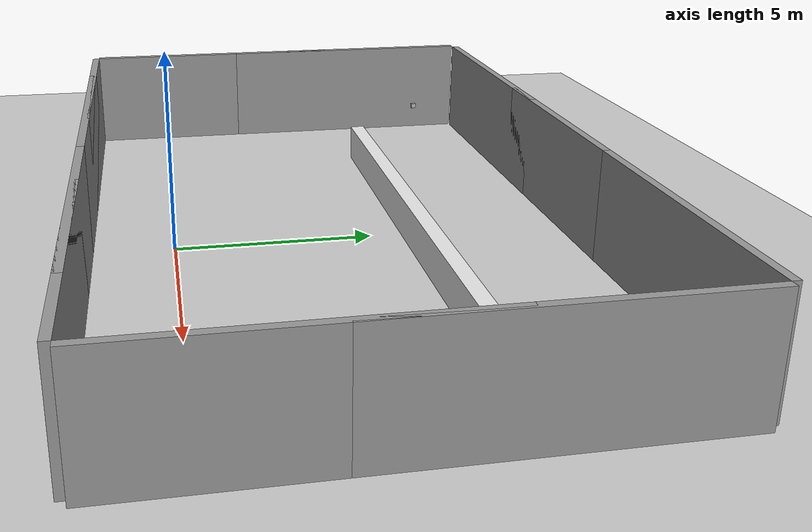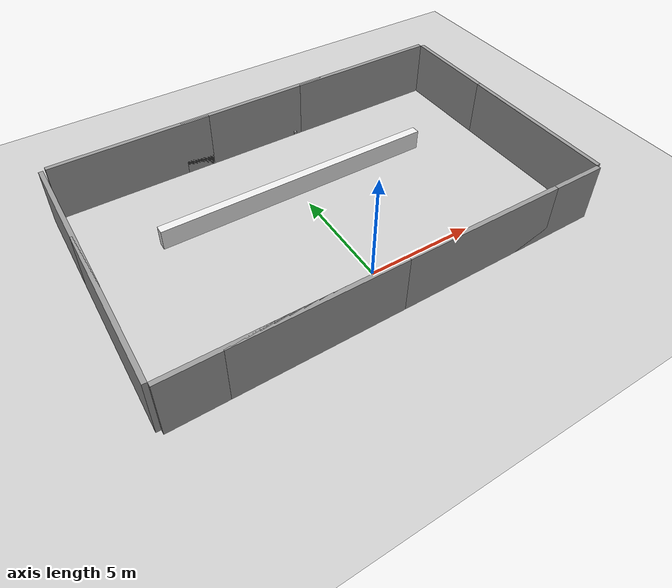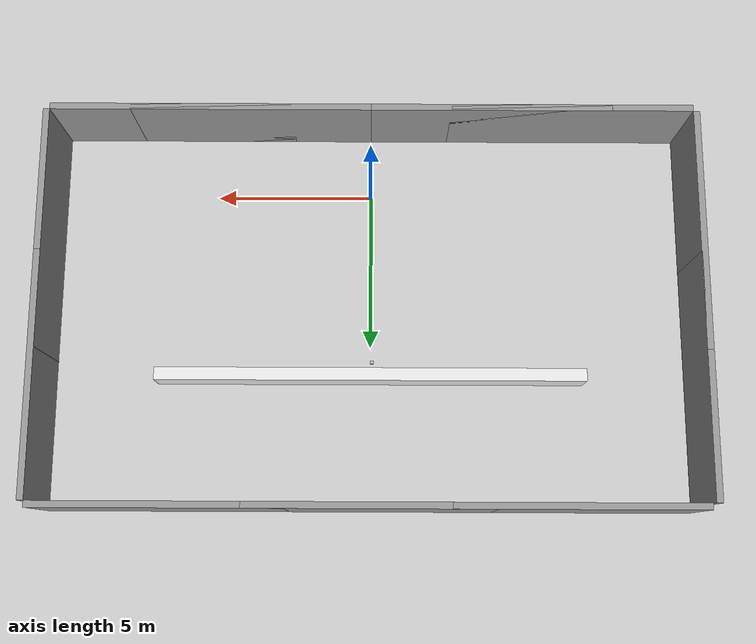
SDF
<sdf version="1.6">
 <world name="default">
  <light name="sun" type="directional">
   <cast_shadows>0</cast_shadows>
   <pose>0 0 10 0 -0 0</pose>
   <diffuse>0.8 0.8 0.8 1</diffuse>
   <specular>0.2 0.2 0.2 1</specular>
   <attenuation>
    <range>1000</range>
    <constant>0.9</constant>
    <linear>0.01</linear>
    <quadratic>0.001</quadratic>
   </attenuation>
   <direction>-0.5 0.1 -0.9</direction>
  </light>
  <model name="ground_plane">
   <static>1</static>
   <link name="link">
    <collision name="collision">
     <geometry><plane><normal>0 0 1</normal><size>100 100</size></plane></geometry>
     <surface>
      <contact><collide_bitmask>65535</collide_bitmask></contact>
      <friction><ode><mu>100</mu><mu2>50</mu2></ode></friction>
     </surface>
    </collision>
    <visual name="visual">
     <cast_shadows>0</cast_shadows>
     <geometry><plane><normal>0 0 1</normal><size>100 100</size></plane></geometry>
     <material>
      <script><uri>file://media/materials/scripts/gazebo.material</uri><name>Gazebo/Grey</name></script>
     </material>
    </visual>
   </link>
  </model>
  <gravity>0 0 -9.8</gravity>
  <magnetic_field>6e-06 2.3e-05 -4.2e-05</magnetic_field>
  <atmosphere type="adiabatic"/>
  <physics name="default_physics" default="0" type="ode">
   <max_step_size>0.001</max_step_size>
   <real_time_factor>1</real_time_factor>
   <real_time_update_rate>1000</real_time_update_rate>
  </physics>
  <scene><ambient>0.4 0.4 0.4 1</ambient><background>0.7 0.7 0.7 1</background><shadows>0</shadows></scene>
  <audio><device>default</device></audio>
  <spherical_coordinates>
   <surface_model>EARTH_WGS84</surface_model>
   <latitude_deg>0</latitude_deg>
   <longitude_deg>0</longitude_deg>
   <elevation>0</elevation>
   <heading_deg>0</heading_deg>
  </spherical_coordinates>
  <model name="grey_wall">
   <static>1</static>
   <link name="link">
    <pose>0 0 1.4 0 -0 0</pose>
    <collision name="collision"><geometry><box><size>7.5 0.2 2.8</size></box></geometry></collision>
    <visual name="visual">
     <cast_shadows>0</cast_shadows>
     <geometry><box><size>7.5 0.2 2.8</size></box></geometry>
     <material>
      <script>
       <uri>model://grey_wall/materials/scripts</uri>
       <uri>model://grey_wall/materials/textures</uri>
       <name>vrc/grey_wall</name>
      </script>
     </material>
    </visual>
   </link>
   <pose>-3.75 -2.1 0 0 -0 0</pose>
  </model>
  <model name="grey_wall_0">
   <static>1</static>
   <link name="link">
    <pose>0 0 1.4 0 -0 0</pose>
    <collision name="collision"><geometry><box><size>7.5 0.2 2.8</size></box></geometry></collision>
    <visual name="visual">
     <cast_shadows>0</cast_shadows>
     <geometry><box><size>7.5 0.2 2.8</size></box></geometry>
     <material>
      <script>
       <uri>model://grey_wall/materials/scripts</uri>
       <uri>model://grey_wall/materials/textures</uri>
       <name>vrc/grey_wall</name>
      </script>
     </material>
    </visual>
   </link>
   <pose>3.75 -2.1 0 0 -0 0</pose>
  </model>
  <model name="grey_wall_1">
   <static>1</static>
   <link name="link">
    <pose>0 0 1.4 0 -0 0</pose>
    <collision name="collision"><geometry><box><size>7.5 0.2 2.8</size></box></geometry></collision>
    <visual name="visual">
     <cast_shadows>0</cast_shadows>
     <geometry><box><size>7.5 0.2 2.8</size></box></geometry>
     <material>
      <script>
       <uri>model://grey_wall/materials/scripts</uri>
       <uri>model://grey_wall/materials/textures</uri>
       <name>vrc/grey_wall</name>
      </script>
     </material>
    </visual>
   </link>
   <pose>-6.25 -2.1 0 0 -0 0</pose>
  </model>
  <model name="grey_wall_2">
   <static>1</static>
   <link name="link">
    <pose>0 0 1.4 0 -0 0</pose>
    <collision name="collision"><geometry><box><size>7.5 0.2 2.8</size></box></geometry></collision>
    <visual name="visual">
     <cast_shadows>0</cast_shadows>
     <geometry><box><size>7.5 0.2 2.8</size></box></geometry>
     <material>
      <script>
       <uri>model://grey_wall/materials/scripts</uri>
       <uri>model://grey_wall/materials/textures</uri>
       <name>vrc/grey_wall</name>
      </script>
     </material>
    </visual>
   </link>
   <pose>6.25 -2.1 0 0 -0 0</pose>
  </model>
  <model name="grey_wall_3">
   <static>1</static>
   <link name="link">
    <pose>0 0 1.4 0 -0 0</pose>
    <collision name="collision"><geometry><box><size>7.5 0.2 2.8</size></box></geometry></collision>
    <visual name="visual">
     <cast_shadows>0</cast_shadows>
     <geometry><box><size>7.5 0.2 2.8</size></box></geometry>
     <material>
      <script>
       <uri>model://grey_wall/materials/scripts</uri>
       <uri>model://grey_wall/materials/textures</uri>
       <name>vrc/grey_wall</name>
      </script>
     </material>
    </visual>
   </link>
   <pose>-10.1 1.75 0 0 -0 1.5708</pose>
  </model>
  <model name="grey_wall_3_clone">
   <static>1</static>
   <link name="link">
    <pose>0 0 1.4 0 -0 0</pose>
    <collision name="collision"><geometry><box><size>7.5 0.2 2.8</size></box></geometry></collision>
    <visual name="visual">
     <cast_shadows>0</cast_shadows>
     <geometry><box><size>7.5 0.2 2.8</size></box></geometry>
     <material>
      <script>
       <uri>model://grey_wall/materials/scripts</uri>
       <uri>model://grey_wall/materials/textures</uri>
       <name>vrc/grey_wall</name>
      </script>
     </material>
    </visual>
   </link>
   <pose>-10.1 6.25 0 0 -0 1.5708</pose>
  </model>
  <model name="grey_wall_3_clone_clone">
   <static>1</static>
   <link name="link">
    <pose>0 0 1.4 0 -0 0</pose>
    <collision name="collision"><geometry><box><size>7.5 0.2 2.8</size></box></geometry></collision>
    <visual name="visual">
     <cast_shadows>0</cast_shadows>
     <geometry><box><size>7.5 0.2 2.8</size></box></geometry>
     <material>
      <script>
       <uri>model://grey_wall/materials/scripts</uri>
       <uri>model://grey_wall/materials/textures</uri>
       <name>vrc/grey_wall</name>
      </script>
     </material>
    </visual>
   </link>
   <pose>10.1 6.25 0 0 -0 1.5708</pose>
  </model>
  <model name="grey_wall_3_clone_clone_0">
   <static>1</static>
   <link name="link">
    <pose>0 0 1.4 0 -0 0</pose>
    <collision name="collision"><geometry><box><size>7.5 0.2 2.8</size></box></geometry></collision>
    <visual name="visual">
     <cast_shadows>0</cast_shadows>
     <geometry><box><size>7.5 0.2 2.8</size></box></geometry>
     <material>
      <script>
       <uri>model://grey_wall/materials/scripts</uri>
       <uri>model://grey_wall/materials/textures</uri>
       <name>vrc/grey_wall</name>
      </script>
     </material>
    </visual>
   </link>
   <pose>10.1 1.75 0 0 -0 1.5708</pose>
  </model>
  <model name="grey_wall_1_clone">
   <static>1</static>
   <link name="link">
    <pose>0 0 1.4 0 -0 0</pose>
    <collision name="collision"><geometry><box><size>7.5 0.2 2.8</size></box></geometry></collision>
    <visual name="visual">
     <cast_shadows>0</cast_shadows>
     <geometry><box><size>7.5 0.2 2.8</size></box></geometry>
     <material>
      <script>
       <uri>model://grey_wall/materials/scripts</uri>
       <uri>model://grey_wall/materials/textures</uri>
       <name>vrc/grey_wall</name>
      </script>
     </material>
    </visual>
   </link>
   <pose>-6.15 10.1 0 0 -0 0</pose>
  </model>
  <model name="grey_wall_clone">
   <static>1</static>
   <link name="link">
    <pose>0 0 1.4 0 -0 0</pose>
    <collision name="collision"><geometry><box><size>7.5 0.2 2.8</size></box></geometry></collision>
    <visual name="visual">
     <cast_shadows>0</cast_shadows>
     <geometry><box><size>7.5 0.2 2.8</size></box></geometry>
     <material>
      <script>
       <uri>model://grey_wall/materials/scripts</uri>
       <uri>model://grey_wall/materials/textures</uri>
       <name>vrc/grey_wall</name>
      </script>
     </material>
    </visual>
   </link>
   <pose>0 10.1 0 0 -0 0</pose>
  </model>
  <model name="grey_wall_clone_0">
   <static>1</static>
   <link name="link">
    <pose>0 0 1.4 0 -0 0</pose>
    <collision name="collision"><geometry><box><size>7.5 0.2 2.8</size></box></geometry></collision>
    <visual name="visual">
     <cast_shadows>0</cast_shadows>
     <geometry><box><size>7.5 0.2 2.8</size></box></geometry>
     <material>
      <script>
       <uri>model://grey_wall/materials/scripts</uri>
       <uri>model://grey_wall/materials/textures</uri>
       <name>vrc/grey_wall</name>
      </script>
     </material>
    </visual>
   </link>
   <pose>6.25 10.1 0 0 -0 0</pose>
  </model>
  <model name="distorted_camera">
   <link name="link">
    <pose>0.05 0.05 0.05 0 -0 0</pose>
    <inertial>
     <mass>0.1</mass>
     <inertia>
      <ixx>0.000166667</ixx>
      <iyy>0.000166667</iyy>
      <izz>0.000166667</izz>
      <ixy>0</ixy>
      <ixz>0</ixz>
      <iyz>0</iyz>
     </inertia>
    </inertial>
    <collision name="collision"><geometry><box><size>0.1 0.1 0.1</size></box></geometry></collision>
    <visual name="visual"><geometry><box><size>0.1 0.1 0.1</size></box></geometry></visual>
    <gravity>0</gravity>
    <sensor name="camera" type="camera">
     <camera name="__default__">
      <horizontal_fov>1.047</horizontal_fov>
      <image><width>64</width><height>64</height></image>
      <clip><near>0.1</near><far>100</far></clip>
     </camera>
     <plugin name="camera_controller" filename="libgazebo_ros_camera.so">
      <alwaysOn>1</alwaysOn>
      <updateRate>0.0</updateRate>
      <cameraName>top_down_cam</cameraName>
      <imageTopicName>image_raw</imageTopicName>
      <cameraInfoTopicName>camera_info</cameraInfoTopicName>
      <frameName>camera_link</frameName>
      <hackBaseline>0.07</hackBaseline>
      <distortionK1>0.0</distortionK1>
      <distortionK2>0.0</distortionK2>
      <distortionK3>0.0</distortionK3>
      <distortionT1>0.0</distortionT1>
      <distortionT2>0.0</distortionT2>
     </plugin>
     <always_on>1</always_on>
     <update_rate>30</update_rate>
     <visualize>1</visualize>
    </sensor>
   </link>
   <pose>0 6 3.46489 0 1.57 1.57</pose>
  </model>
  <model name="table_cube">
   <link name="link">
    <pose>0 0 0.5 0 -0 0</pose>
    <inertial>
     <mass>10</mass>
     <inertia><ixx>0.17</ixx><ixy>0</ixy><ixz>0</ixz><iyy>0.17</iyy><iyz>0</iyz><izz>0.17</izz></inertia>
    </inertial>
    <collision name="collision">
     <geometry><box><size>13.5 0.4 1</size></box></geometry>
     <surface>
      <contact>
       <poissons_ratio>0.347</poissons_ratio>
       <elastic_modulus>8.8e+09</elastic_modulus>
       <ode><kp>100000</kp><kd>100</kd><max_vel>100</max_vel><min_depth>0.001</min_depth></ode>
      </contact>
     </surface>
    </collision>
    <visual name="visual">
     <geometry><box><size>13.5 0.4 1</size></box></geometry>
     <material>
      <script><uri>file://media/materials/scripts/gazebo.material</uri><name>Gazebo/White</name></script>
     </material>
    </visual>
   </link>
   <static>1</static>
   <pose>0 6 0 0 -0 0</pose>
  </model>
 </world>
</sdf>
